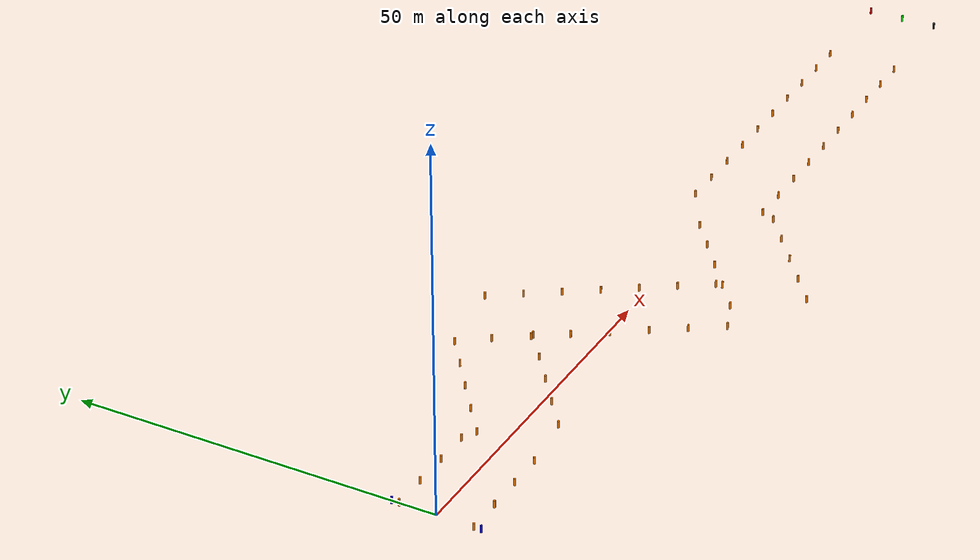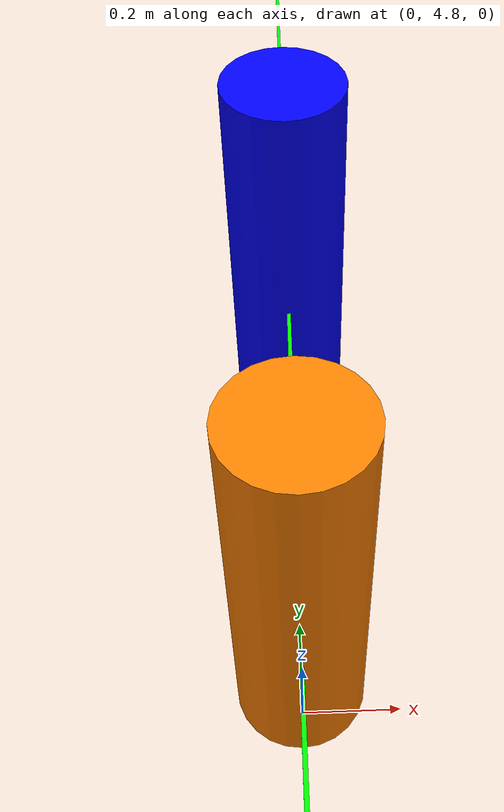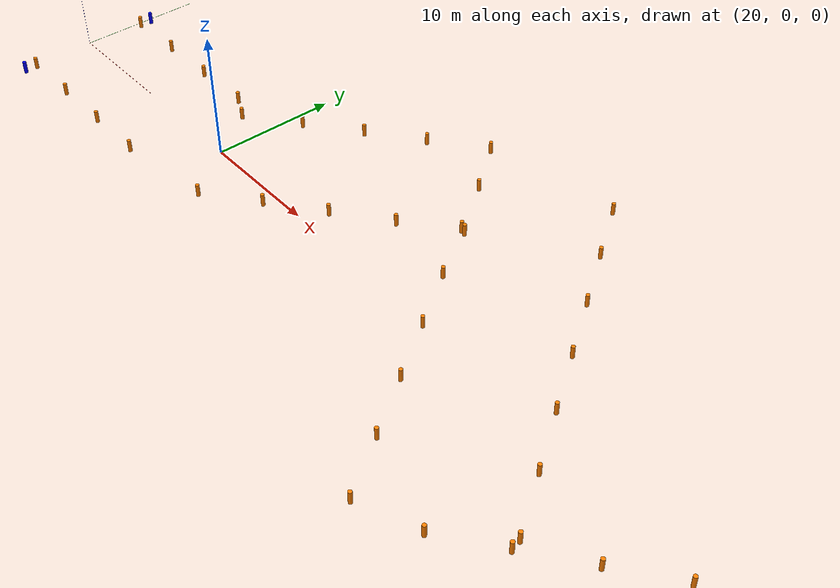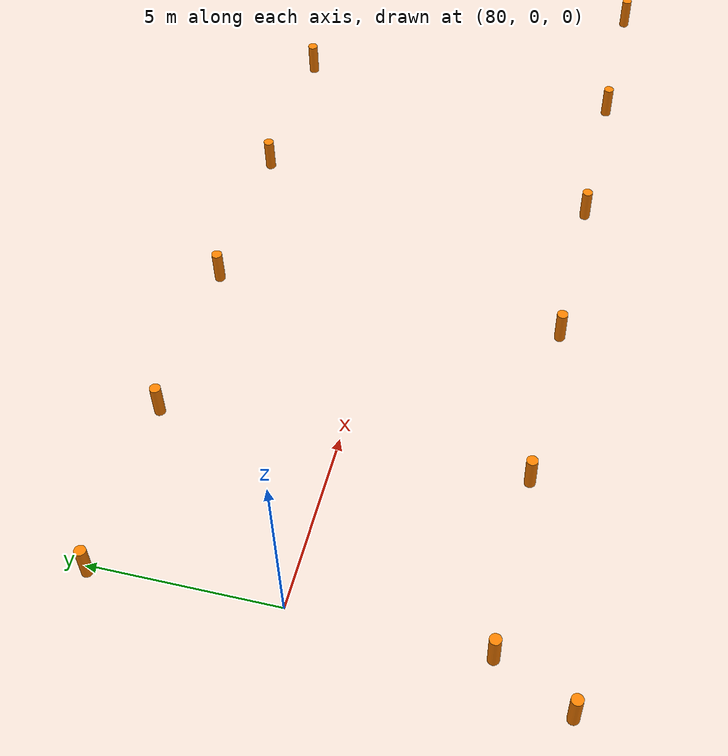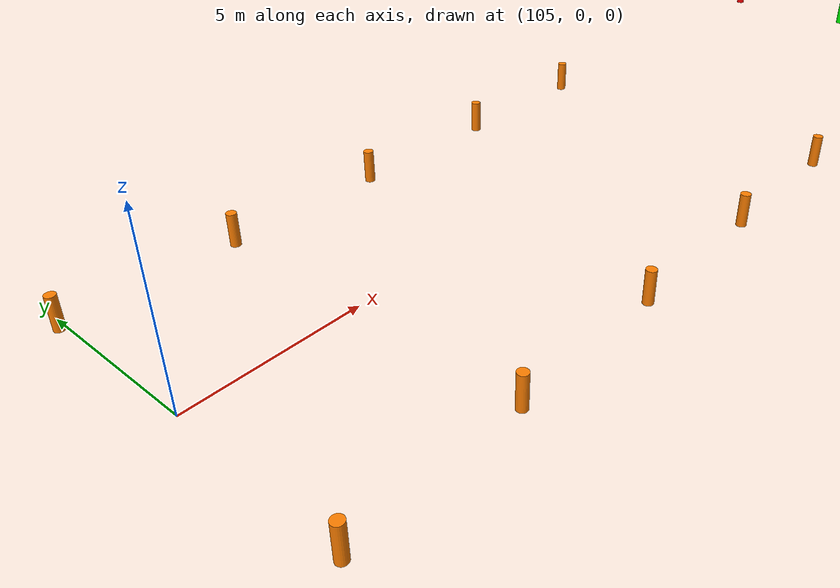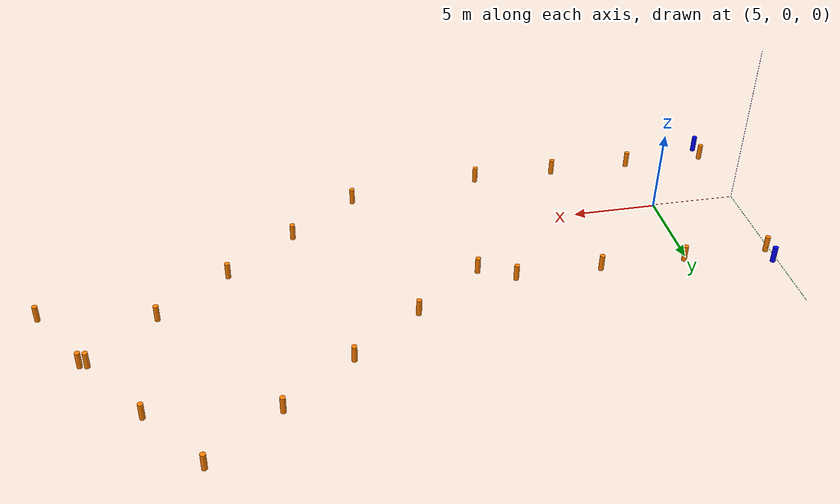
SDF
<sdf version="1.6">
 <world name="waves">
  <plugin filename="gz-sim-physics-system" name="gz::sim::systems::Physics"/>
  <plugin filename="gz-sim-sensors-system" name="gz::sim::systems::Sensors">
   <render_engine>ogre2</render_engine>
   <background_color>0.8 0.8 0.8</background_color>
  </plugin>
  <plugin filename="gz-sim-scene-broadcaster-system" name="gz::sim::systems::SceneBroadcaster"/>
  <plugin filename="gz-sim-user-commands-system" name="gz::sim::systems::UserCommands"/>
  <plugin filename="gz-sim-imu-system" name="gz::sim::systems::Imu"/>
  <plugin filename="gz-sim-navsat-system" name="gz::sim::systems::NavSat"/>
  <spherical_coordinates>
   <surface_model>EARTH_WGS84</surface_model>
   <world_frame_orientation>ENU</world_frame_orientation>
   <latitude_deg>-22.986687</latitude_deg>
   <longitude_deg>-43.202501</longitude_deg>
   <elevation>0</elevation>
   <heading_deg>0</heading_deg>
  </spherical_coordinates>
  <scene><ambient>1.0 1.0 1.0</ambient><background>0.8 0.8 0.8</background></scene>
  <light type="directional" name="sun">
   <pose>0 0 10 0 0 0</pose>
   <diffuse>0.8 0.8 0.8 1</diffuse>
   <specular>0.6 0.6 0.6 1</specular>
   <direction>-0.5 0.1 -0.9</direction>
  </light>
  <model name="axes">
   <static>1</static>
   <link name="link">
    <visual name="r">
     <cast_shadows>0</cast_shadows>
     <pose>5 0 0.1 0 0 0</pose>
     <geometry><box><size>10 0.01 0.01</size></box></geometry>
     <material>
      <ambient>1 0 0 1</ambient>
      <diffuse>1 0 0 1</diffuse>
      <emissive>1 0 0 1</emissive>
      <specular>0.5 0.5 0.5 1</specular>
     </material>
    </visual>
    <visual name="g">
     <cast_shadows>0</cast_shadows>
     <pose>0 5 0.1 0 0 0</pose>
     <geometry><box><size>0.01 10 0.01</size></box></geometry>
     <material>
      <ambient>0 1 0 1</ambient>
      <diffuse>0 1 0 1</diffuse>
      <emissive>0 1 0 1</emissive>
      <specular>0.5 0.5 0.5 1</specular>
     </material>
    </visual>
    <visual name="b">
     <cast_shadows>0</cast_shadows>
     <pose>0 0 5.1 0 0 0</pose>
     <geometry><box><size>0.01 0.01 10</size></box></geometry>
     <material>
      <ambient>0 0 1 1</ambient>
      <diffuse>0 0 1 1</diffuse>
      <emissive>0 0 1 1</emissive>
      <specular>0.5 0.5 0.5 1</specular>
     </material>
    </visual>
   </link>
  </model>
  <model name="p1_left_0_0">
   <pose>0.00 5.00 0.2 0 0 0</pose>
   <static>true</static>
   <link name="link">
    <visual name="visual">
     <geometry><cylinder><radius>0.15</radius><length>1.0</length></cylinder></geometry>
     <material><ambient>1 0.5 0 1</ambient><diffuse>1 0.5 0 1</diffuse></material>
    </visual>
    <collision name="collision">
     <geometry><cylinder><radius>0.15</radius><length>1.0</length></cylinder></geometry>
    </collision>
   </link>
  </model>
  <model name="p1_right_0_0">
   <pose>0.00 -5.00 0.2 0 0 0</pose>
   <static>true</static>
   <link name="link">
    <visual name="visual">
     <geometry><cylinder><radius>0.15</radius><length>1.0</length></cylinder></geometry>
     <material><ambient>1 0.5 0 1</ambient><diffuse>1 0.5 0 1</diffuse></material>
    </visual>
    <collision name="collision">
     <geometry><cylinder><radius>0.15</radius><length>1.0</length></cylinder></geometry>
    </collision>
   </link>
  </model>
  <model name="p1_left_0_1">
   <pose>5.00 5.00 0.2 0 0 0</pose>
   <static>true</static>
   <link name="link">
    <visual name="visual">
     <geometry><cylinder><radius>0.15</radius><length>1.0</length></cylinder></geometry>
     <material><ambient>1 0.5 0 1</ambient><diffuse>1 0.5 0 1</diffuse></material>
    </visual>
    <collision name="collision">
     <geometry><cylinder><radius>0.15</radius><length>1.0</length></cylinder></geometry>
    </collision>
   </link>
  </model>
  <model name="p1_right_0_1">
   <pose>5.00 -5.00 0.2 0 0 0</pose>
   <static>true</static>
   <link name="link">
    <visual name="visual">
     <geometry><cylinder><radius>0.15</radius><length>1.0</length></cylinder></geometry>
     <material><ambient>1 0.5 0 1</ambient><diffuse>1 0.5 0 1</diffuse></material>
    </visual>
    <collision name="collision">
     <geometry><cylinder><radius>0.15</radius><length>1.0</length></cylinder></geometry>
    </collision>
   </link>
  </model>
  <model name="p1_left_0_2">
   <pose>10.00 5.00 0.2 0 0 0</pose>
   <static>true</static>
   <link name="link">
    <visual name="visual">
     <geometry><cylinder><radius>0.15</radius><length>1.0</length></cylinder></geometry>
     <material><ambient>1 0.5 0 1</ambient><diffuse>1 0.5 0 1</diffuse></material>
    </visual>
    <collision name="collision">
     <geometry><cylinder><radius>0.15</radius><length>1.0</length></cylinder></geometry>
    </collision>
   </link>
  </model>
  <model name="p1_right_0_2">
   <pose>10.00 -5.00 0.2 0 0 0</pose>
   <static>true</static>
   <link name="link">
    <visual name="visual">
     <geometry><cylinder><radius>0.15</radius><length>1.0</length></cylinder></geometry>
     <material><ambient>1 0.5 0 1</ambient><diffuse>1 0.5 0 1</diffuse></material>
    </visual>
    <collision name="collision">
     <geometry><cylinder><radius>0.15</radius><length>1.0</length></cylinder></geometry>
    </collision>
   </link>
  </model>
  <model name="p1_left_0_3">
   <pose>15.00 5.00 0.2 0 0 0</pose>
   <static>true</static>
   <link name="link">
    <visual name="visual">
     <geometry><cylinder><radius>0.15</radius><length>1.0</length></cylinder></geometry>
     <material><ambient>1 0.5 0 1</ambient><diffuse>1 0.5 0 1</diffuse></material>
    </visual>
    <collision name="collision">
     <geometry><cylinder><radius>0.15</radius><length>1.0</length></cylinder></geometry>
    </collision>
   </link>
  </model>
  <model name="p1_right_0_3">
   <pose>15.00 -5.00 0.2 0 0 0</pose>
   <static>true</static>
   <link name="link">
    <visual name="visual">
     <geometry><cylinder><radius>0.15</radius><length>1.0</length></cylinder></geometry>
     <material><ambient>1 0.5 0 1</ambient><diffuse>1 0.5 0 1</diffuse></material>
    </visual>
    <collision name="collision">
     <geometry><cylinder><radius>0.15</radius><length>1.0</length></cylinder></geometry>
    </collision>
   </link>
  </model>
  <model name="p1_left_1_0">
   <pose>17.00 4.00 0.2 0 0 0</pose>
   <static>true</static>
   <link name="link">
    <visual name="visual">
     <geometry><cylinder><radius>0.15</radius><length>1.0</length></cylinder></geometry>
     <material><ambient>1 0.5 0 1</ambient><diffuse>1 0.5 0 1</diffuse></material>
    </visual>
    <collision name="collision">
     <geometry><cylinder><radius>0.15</radius><length>1.0</length></cylinder></geometry>
    </collision>
   </link>
  </model>
  <model name="p1_right_1_0">
   <pose>23.00 -4.00 0.2 0 0 0</pose>
   <static>true</static>
   <link name="link">
    <visual name="visual">
     <geometry><cylinder><radius>0.15</radius><length>1.0</length></cylinder></geometry>
     <material><ambient>1 0.5 0 1</ambient><diffuse>1 0.5 0 1</diffuse></material>
    </visual>
    <collision name="collision">
     <geometry><cylinder><radius>0.15</radius><length>1.0</length></cylinder></geometry>
    </collision>
   </link>
  </model>
  <model name="p1_left_1_1">
   <pose>21.00 7.00 0.2 0 0 0</pose>
   <static>true</static>
   <link name="link">
    <visual name="visual">
     <geometry><cylinder><radius>0.15</radius><length>1.0</length></cylinder></geometry>
     <material><ambient>1 0.5 0 1</ambient><diffuse>1 0.5 0 1</diffuse></material>
    </visual>
    <collision name="collision">
     <geometry><cylinder><radius>0.15</radius><length>1.0</length></cylinder></geometry>
    </collision>
   </link>
  </model>
  <model name="p1_right_1_1">
   <pose>27.00 -1.00 0.2 0 0 0</pose>
   <static>true</static>
   <link name="link">
    <visual name="visual">
     <geometry><cylinder><radius>0.15</radius><length>1.0</length></cylinder></geometry>
     <material><ambient>1 0.5 0 1</ambient><diffuse>1 0.5 0 1</diffuse></material>
    </visual>
    <collision name="collision">
     <geometry><cylinder><radius>0.15</radius><length>1.0</length></cylinder></geometry>
    </collision>
   </link>
  </model>
  <model name="p1_left_1_2">
   <pose>25.00 10.00 0.2 0 0 0</pose>
   <static>true</static>
   <link name="link">
    <visual name="visual">
     <geometry><cylinder><radius>0.15</radius><length>1.0</length></cylinder></geometry>
     <material><ambient>1 0.5 0 1</ambient><diffuse>1 0.5 0 1</diffuse></material>
    </visual>
    <collision name="collision">
     <geometry><cylinder><radius>0.15</radius><length>1.0</length></cylinder></geometry>
    </collision>
   </link>
  </model>
  <model name="p1_right_1_2">
   <pose>31.00 2.00 0.2 0 0 0</pose>
   <static>true</static>
   <link name="link">
    <visual name="visual">
     <geometry><cylinder><radius>0.15</radius><length>1.0</length></cylinder></geometry>
     <material><ambient>1 0.5 0 1</ambient><diffuse>1 0.5 0 1</diffuse></material>
    </visual>
    <collision name="collision">
     <geometry><cylinder><radius>0.15</radius><length>1.0</length></cylinder></geometry>
    </collision>
   </link>
  </model>
  <model name="p1_left_1_3">
   <pose>29.00 13.00 0.2 0 0 0</pose>
   <static>true</static>
   <link name="link">
    <visual name="visual">
     <geometry><cylinder><radius>0.15</radius><length>1.0</length></cylinder></geometry>
     <material><ambient>1 0.5 0 1</ambient><diffuse>1 0.5 0 1</diffuse></material>
    </visual>
    <collision name="collision">
     <geometry><cylinder><radius>0.15</radius><length>1.0</length></cylinder></geometry>
    </collision>
   </link>
  </model>
  <model name="p1_right_1_3">
   <pose>35.00 5.00 0.2 0 0 0</pose>
   <static>true</static>
   <link name="link">
    <visual name="visual">
     <geometry><cylinder><radius>0.15</radius><length>1.0</length></cylinder></geometry>
     <material><ambient>1 0.5 0 1</ambient><diffuse>1 0.5 0 1</diffuse></material>
    </visual>
    <collision name="collision">
     <geometry><cylinder><radius>0.15</radius><length>1.0</length></cylinder></geometry>
    </collision>
   </link>
  </model>
  <model name="p1_left_1_4">
   <pose>33.00 16.00 0.2 0 0 0</pose>
   <static>true</static>
   <link name="link">
    <visual name="visual">
     <geometry><cylinder><radius>0.15</radius><length>1.0</length></cylinder></geometry>
     <material><ambient>1 0.5 0 1</ambient><diffuse>1 0.5 0 1</diffuse></material>
    </visual>
    <collision name="collision">
     <geometry><cylinder><radius>0.15</radius><length>1.0</length></cylinder></geometry>
    </collision>
   </link>
  </model>
  <model name="p1_right_1_4">
   <pose>39.00 8.00 0.2 0 0 0</pose>
   <static>true</static>
   <link name="link">
    <visual name="visual">
     <geometry><cylinder><radius>0.15</radius><length>1.0</length></cylinder></geometry>
     <material><ambient>1 0.5 0 1</ambient><diffuse>1 0.5 0 1</diffuse></material>
    </visual>
    <collision name="collision">
     <geometry><cylinder><radius>0.15</radius><length>1.0</length></cylinder></geometry>
    </collision>
   </link>
  </model>
  <model name="p1_left_2_0">
   <pose>44.16 17.77 0.2 0 0 0</pose>
   <static>true</static>
   <link name="link">
    <visual name="visual">
     <geometry><cylinder><radius>0.15</radius><length>1.0</length></cylinder></geometry>
     <material><ambient>1 0.5 0 1</ambient><diffuse>1 0.5 0 1</diffuse></material>
    </visual>
    <collision name="collision">
     <geometry><cylinder><radius>0.15</radius><length>1.0</length></cylinder></geometry>
    </collision>
   </link>
  </model>
  <model name="p1_right_2_0">
   <pose>35.84 12.23 0.2 0 0 0</pose>
   <static>true</static>
   <link name="link">
    <visual name="visual">
     <geometry><cylinder><radius>0.15</radius><length>1.0</length></cylinder></geometry>
     <material><ambient>1 0.5 0 1</ambient><diffuse>1 0.5 0 1</diffuse></material>
    </visual>
    <collision name="collision">
     <geometry><cylinder><radius>0.15</radius><length>1.0</length></cylinder></geometry>
    </collision>
   </link>
  </model>
  <model name="p1_left_2_1">
   <pose>46.93 13.61 0.2 0 0 0</pose>
   <static>true</static>
   <link name="link">
    <visual name="visual">
     <geometry><cylinder><radius>0.15</radius><length>1.0</length></cylinder></geometry>
     <material><ambient>1 0.5 0 1</ambient><diffuse>1 0.5 0 1</diffuse></material>
    </visual>
    <collision name="collision">
     <geometry><cylinder><radius>0.15</radius><length>1.0</length></cylinder></geometry>
    </collision>
   </link>
  </model>
  <model name="p1_right_2_1">
   <pose>38.61 8.07 0.2 0 0 0</pose>
   <static>true</static>
   <link name="link">
    <visual name="visual">
     <geometry><cylinder><radius>0.15</radius><length>1.0</length></cylinder></geometry>
     <material><ambient>1 0.5 0 1</ambient><diffuse>1 0.5 0 1</diffuse></material>
    </visual>
    <collision name="collision">
     <geometry><cylinder><radius>0.15</radius><length>1.0</length></cylinder></geometry>
    </collision>
   </link>
  </model>
  <model name="p1_left_2_2">
   <pose>49.71 9.45 0.2 0 0 0</pose>
   <static>true</static>
   <link name="link">
    <visual name="visual">
     <geometry><cylinder><radius>0.15</radius><length>1.0</length></cylinder></geometry>
     <material><ambient>1 0.5 0 1</ambient><diffuse>1 0.5 0 1</diffuse></material>
    </visual>
    <collision name="collision">
     <geometry><cylinder><radius>0.15</radius><length>1.0</length></cylinder></geometry>
    </collision>
   </link>
  </model>
  <model name="p1_right_2_2">
   <pose>41.39 3.91 0.2 0 0 0</pose>
   <static>true</static>
   <link name="link">
    <visual name="visual">
     <geometry><cylinder><radius>0.15</radius><length>1.0</length></cylinder></geometry>
     <material><ambient>1 0.5 0 1</ambient><diffuse>1 0.5 0 1</diffuse></material>
    </visual>
    <collision name="collision">
     <geometry><cylinder><radius>0.15</radius><length>1.0</length></cylinder></geometry>
    </collision>
   </link>
  </model>
  <model name="p1_left_2_3">
   <pose>52.48 5.29 0.2 0 0 0</pose>
   <static>true</static>
   <link name="link">
    <visual name="visual">
     <geometry><cylinder><radius>0.15</radius><length>1.0</length></cylinder></geometry>
     <material><ambient>1 0.5 0 1</ambient><diffuse>1 0.5 0 1</diffuse></material>
    </visual>
    <collision name="collision">
     <geometry><cylinder><radius>0.15</radius><length>1.0</length></cylinder></geometry>
    </collision>
   </link>
  </model>
  <model name="p1_right_2_3">
   <pose>44.16 -0.25 0.2 0 0 0</pose>
   <static>true</static>
   <link name="link">
    <visual name="visual">
     <geometry><cylinder><radius>0.15</radius><length>1.0</length></cylinder></geometry>
     <material><ambient>1 0.5 0 1</ambient><diffuse>1 0.5 0 1</diffuse></material>
    </visual>
    <collision name="collision">
     <geometry><cylinder><radius>0.15</radius><length>1.0</length></cylinder></geometry>
    </collision>
   </link>
  </model>
  <model name="p1_left_2_4">
   <pose>55.25 1.13 0.2 0 0 0</pose>
   <static>true</static>
   <link name="link">
    <visual name="visual">
     <geometry><cylinder><radius>0.15</radius><length>1.0</length></cylinder></geometry>
     <material><ambient>1 0.5 0 1</ambient><diffuse>1 0.5 0 1</diffuse></material>
    </visual>
    <collision name="collision">
     <geometry><cylinder><radius>0.15</radius><length>1.0</length></cylinder></geometry>
    </collision>
   </link>
  </model>
  <model name="p1_right_2_4">
   <pose>46.93 -4.41 0.2 0 0 0</pose>
   <static>true</static>
   <link name="link">
    <visual name="visual">
     <geometry><cylinder><radius>0.15</radius><length>1.0</length></cylinder></geometry>
     <material><ambient>1 0.5 0 1</ambient><diffuse>1 0.5 0 1</diffuse></material>
    </visual>
    <collision name="collision">
     <geometry><cylinder><radius>0.15</radius><length>1.0</length></cylinder></geometry>
    </collision>
   </link>
  </model>
  <model name="p1_left_2_5">
   <pose>58.03 -3.03 0.2 0 0 0</pose>
   <static>true</static>
   <link name="link">
    <visual name="visual">
     <geometry><cylinder><radius>0.15</radius><length>1.0</length></cylinder></geometry>
     <material><ambient>1 0.5 0 1</ambient><diffuse>1 0.5 0 1</diffuse></material>
    </visual>
    <collision name="collision">
     <geometry><cylinder><radius>0.15</radius><length>1.0</length></cylinder></geometry>
    </collision>
   </link>
  </model>
  <model name="p1_right_2_5">
   <pose>49.71 -8.57 0.2 0 0 0</pose>
   <static>true</static>
   <link name="link">
    <visual name="visual">
     <geometry><cylinder><radius>0.15</radius><length>1.0</length></cylinder></geometry>
     <material><ambient>1 0.5 0 1</ambient><diffuse>1 0.5 0 1</diffuse></material>
    </visual>
    <collision name="collision">
     <geometry><cylinder><radius>0.15</radius><length>1.0</length></cylinder></geometry>
    </collision>
   </link>
  </model>
  <model name="p1_left_2_6">
   <pose>60.80 -7.19 0.2 0 0 0</pose>
   <static>true</static>
   <link name="link">
    <visual name="visual">
     <geometry><cylinder><radius>0.15</radius><length>1.0</length></cylinder></geometry>
     <material><ambient>1 0.5 0 1</ambient><diffuse>1 0.5 0 1</diffuse></material>
    </visual>
    <collision name="collision">
     <geometry><cylinder><radius>0.15</radius><length>1.0</length></cylinder></geometry>
    </collision>
   </link>
  </model>
  <model name="p1_right_2_6">
   <pose>52.48 -12.74 0.2 0 0 0</pose>
   <static>true</static>
   <link name="link">
    <visual name="visual">
     <geometry><cylinder><radius>0.15</radius><length>1.0</length></cylinder></geometry>
     <material><ambient>1 0.5 0 1</ambient><diffuse>1 0.5 0 1</diffuse></material>
    </visual>
    <collision name="collision">
     <geometry><cylinder><radius>0.15</radius><length>1.0</length></cylinder></geometry>
    </collision>
   </link>
  </model>
  <model name="p1_left_3_0">
   <pose>57.00 -11.00 0.2 0 0 0</pose>
   <static>true</static>
   <link name="link">
    <visual name="visual">
     <geometry><cylinder><radius>0.15</radius><length>1.0</length></cylinder></geometry>
     <material><ambient>1 0.5 0 1</ambient><diffuse>1 0.5 0 1</diffuse></material>
    </visual>
    <collision name="collision">
     <geometry><cylinder><radius>0.15</radius><length>1.0</length></cylinder></geometry>
    </collision>
   </link>
  </model>
  <model name="p1_right_3_0">
   <pose>63.00 -19.00 0.2 0 0 0</pose>
   <static>true</static>
   <link name="link">
    <visual name="visual">
     <geometry><cylinder><radius>0.15</radius><length>1.0</length></cylinder></geometry>
     <material><ambient>1 0.5 0 1</ambient><diffuse>1 0.5 0 1</diffuse></material>
    </visual>
    <collision name="collision">
     <geometry><cylinder><radius>0.15</radius><length>1.0</length></cylinder></geometry>
    </collision>
   </link>
  </model>
  <model name="p1_left_3_1">
   <pose>61.00 -8.00 0.2 0 0 0</pose>
   <static>true</static>
   <link name="link">
    <visual name="visual">
     <geometry><cylinder><radius>0.15</radius><length>1.0</length></cylinder></geometry>
     <material><ambient>1 0.5 0 1</ambient><diffuse>1 0.5 0 1</diffuse></material>
    </visual>
    <collision name="collision">
     <geometry><cylinder><radius>0.15</radius><length>1.0</length></cylinder></geometry>
    </collision>
   </link>
  </model>
  <model name="p1_right_3_1">
   <pose>67.00 -16.00 0.2 0 0 0</pose>
   <static>true</static>
   <link name="link">
    <visual name="visual">
     <geometry><cylinder><radius>0.15</radius><length>1.0</length></cylinder></geometry>
     <material><ambient>1 0.5 0 1</ambient><diffuse>1 0.5 0 1</diffuse></material>
    </visual>
    <collision name="collision">
     <geometry><cylinder><radius>0.15</radius><length>1.0</length></cylinder></geometry>
    </collision>
   </link>
  </model>
  <model name="p1_left_3_2">
   <pose>65.00 -5.00 0.2 0 0 0</pose>
   <static>true</static>
   <link name="link">
    <visual name="visual">
     <geometry><cylinder><radius>0.15</radius><length>1.0</length></cylinder></geometry>
     <material><ambient>1 0.5 0 1</ambient><diffuse>1 0.5 0 1</diffuse></material>
    </visual>
    <collision name="collision">
     <geometry><cylinder><radius>0.15</radius><length>1.0</length></cylinder></geometry>
    </collision>
   </link>
  </model>
  <model name="p1_right_3_2">
   <pose>71.00 -13.00 0.2 0 0 0</pose>
   <static>true</static>
   <link name="link">
    <visual name="visual">
     <geometry><cylinder><radius>0.15</radius><length>1.0</length></cylinder></geometry>
     <material><ambient>1 0.5 0 1</ambient><diffuse>1 0.5 0 1</diffuse></material>
    </visual>
    <collision name="collision">
     <geometry><cylinder><radius>0.15</radius><length>1.0</length></cylinder></geometry>
    </collision>
   </link>
  </model>
  <model name="p1_left_3_3">
   <pose>69.00 -2.00 0.2 0 0 0</pose>
   <static>true</static>
   <link name="link">
    <visual name="visual">
     <geometry><cylinder><radius>0.15</radius><length>1.0</length></cylinder></geometry>
     <material><ambient>1 0.5 0 1</ambient><diffuse>1 0.5 0 1</diffuse></material>
    </visual>
    <collision name="collision">
     <geometry><cylinder><radius>0.15</radius><length>1.0</length></cylinder></geometry>
    </collision>
   </link>
  </model>
  <model name="p1_right_3_3">
   <pose>75.00 -10.00 0.2 0 0 0</pose>
   <static>true</static>
   <link name="link">
    <visual name="visual">
     <geometry><cylinder><radius>0.15</radius><length>1.0</length></cylinder></geometry>
     <material><ambient>1 0.5 0 1</ambient><diffuse>1 0.5 0 1</diffuse></material>
    </visual>
    <collision name="collision">
     <geometry><cylinder><radius>0.15</radius><length>1.0</length></cylinder></geometry>
    </collision>
   </link>
  </model>
  <model name="p1_left_3_4">
   <pose>73.00 1.00 0.2 0 0 0</pose>
   <static>true</static>
   <link name="link">
    <visual name="visual">
     <geometry><cylinder><radius>0.15</radius><length>1.0</length></cylinder></geometry>
     <material><ambient>1 0.5 0 1</ambient><diffuse>1 0.5 0 1</diffuse></material>
    </visual>
    <collision name="collision">
     <geometry><cylinder><radius>0.15</radius><length>1.0</length></cylinder></geometry>
    </collision>
   </link>
  </model>
  <model name="p1_right_3_4">
   <pose>79.00 -7.00 0.2 0 0 0</pose>
   <static>true</static>
   <link name="link">
    <visual name="visual">
     <geometry><cylinder><radius>0.15</radius><length>1.0</length></cylinder></geometry>
     <material><ambient>1 0.5 0 1</ambient><diffuse>1 0.5 0 1</diffuse></material>
    </visual>
    <collision name="collision">
     <geometry><cylinder><radius>0.15</radius><length>1.0</length></cylinder></geometry>
    </collision>
   </link>
  </model>
  <model name="p2_left_0">
   <pose>80.00 5.00 0.2 0 0 0</pose>
   <static>true</static>
   <link name="link">
    <visual name="visual">
     <geometry><cylinder><radius>0.15</radius><length>1.0</length></cylinder></geometry>
     <material><ambient>1 0.5 0 1</ambient><diffuse>1 0.5 0 1</diffuse></material>
    </visual>
    <collision name="collision">
     <geometry><cylinder><radius>0.15</radius><length>1.0</length></cylinder></geometry>
    </collision>
   </link>
  </model>
  <model name="p2_right_0">
   <pose>80.00 -5.00 0.2 0 0 0</pose>
   <static>true</static>
   <link name="link">
    <visual name="visual">
     <geometry><cylinder><radius>0.15</radius><length>1.0</length></cylinder></geometry>
     <material><ambient>1 0.5 0 1</ambient><diffuse>1 0.5 0 1</diffuse></material>
    </visual>
    <collision name="collision">
     <geometry><cylinder><radius>0.15</radius><length>1.0</length></cylinder></geometry>
    </collision>
   </link>
  </model>
  <model name="p2_left_1">
   <pose>85.00 5.00 0.2 0 0 0</pose>
   <static>true</static>
   <link name="link">
    <visual name="visual">
     <geometry><cylinder><radius>0.15</radius><length>1.0</length></cylinder></geometry>
     <material><ambient>1 0.5 0 1</ambient><diffuse>1 0.5 0 1</diffuse></material>
    </visual>
    <collision name="collision">
     <geometry><cylinder><radius>0.15</radius><length>1.0</length></cylinder></geometry>
    </collision>
   </link>
  </model>
  <model name="p2_right_1">
   <pose>85.00 -5.00 0.2 0 0 0</pose>
   <static>true</static>
   <link name="link">
    <visual name="visual">
     <geometry><cylinder><radius>0.15</radius><length>1.0</length></cylinder></geometry>
     <material><ambient>1 0.5 0 1</ambient><diffuse>1 0.5 0 1</diffuse></material>
    </visual>
    <collision name="collision">
     <geometry><cylinder><radius>0.15</radius><length>1.0</length></cylinder></geometry>
    </collision>
   </link>
  </model>
  <model name="p2_left_2">
   <pose>90.00 5.00 0.2 0 0 0</pose>
   <static>true</static>
   <link name="link">
    <visual name="visual">
     <geometry><cylinder><radius>0.15</radius><length>1.0</length></cylinder></geometry>
     <material><ambient>1 0.5 0 1</ambient><diffuse>1 0.5 0 1</diffuse></material>
    </visual>
    <collision name="collision">
     <geometry><cylinder><radius>0.15</radius><length>1.0</length></cylinder></geometry>
    </collision>
   </link>
  </model>
  <model name="p2_right_2">
   <pose>90.00 -5.00 0.2 0 0 0</pose>
   <static>true</static>
   <link name="link">
    <visual name="visual">
     <geometry><cylinder><radius>0.15</radius><length>1.0</length></cylinder></geometry>
     <material><ambient>1 0.5 0 1</ambient><diffuse>1 0.5 0 1</diffuse></material>
    </visual>
    <collision name="collision">
     <geometry><cylinder><radius>0.15</radius><length>1.0</length></cylinder></geometry>
    </collision>
   </link>
  </model>
  <model name="p2_left_3">
   <pose>95.00 5.00 0.2 0 0 0</pose>
   <static>true</static>
   <link name="link">
    <visual name="visual">
     <geometry><cylinder><radius>0.15</radius><length>1.0</length></cylinder></geometry>
     <material><ambient>1 0.5 0 1</ambient><diffuse>1 0.5 0 1</diffuse></material>
    </visual>
    <collision name="collision">
     <geometry><cylinder><radius>0.15</radius><length>1.0</length></cylinder></geometry>
    </collision>
   </link>
  </model>
  <model name="p2_right_3">
   <pose>95.00 -5.00 0.2 0 0 0</pose>
   <static>true</static>
   <link name="link">
    <visual name="visual">
     <geometry><cylinder><radius>0.15</radius><length>1.0</length></cylinder></geometry>
     <material><ambient>1 0.5 0 1</ambient><diffuse>1 0.5 0 1</diffuse></material>
    </visual>
    <collision name="collision">
     <geometry><cylinder><radius>0.15</radius><length>1.0</length></cylinder></geometry>
    </collision>
   </link>
  </model>
  <model name="p2_left_4">
   <pose>100.00 5.00 0.2 0 0 0</pose>
   <static>true</static>
   <link name="link">
    <visual name="visual">
     <geometry><cylinder><radius>0.15</radius><length>1.0</length></cylinder></geometry>
     <material><ambient>1 0.5 0 1</ambient><diffuse>1 0.5 0 1</diffuse></material>
    </visual>
    <collision name="collision">
     <geometry><cylinder><radius>0.15</radius><length>1.0</length></cylinder></geometry>
    </collision>
   </link>
  </model>
  <model name="p2_right_4">
   <pose>100.00 -5.00 0.2 0 0 0</pose>
   <static>true</static>
   <link name="link">
    <visual name="visual">
     <geometry><cylinder><radius>0.15</radius><length>1.0</length></cylinder></geometry>
     <material><ambient>1 0.5 0 1</ambient><diffuse>1 0.5 0 1</diffuse></material>
    </visual>
    <collision name="collision">
     <geometry><cylinder><radius>0.15</radius><length>1.0</length></cylinder></geometry>
    </collision>
   </link>
  </model>
  <model name="p2_left_5">
   <pose>105.00 5.00 0.2 0 0 0</pose>
   <static>true</static>
   <link name="link">
    <visual name="visual">
     <geometry><cylinder><radius>0.15</radius><length>1.0</length></cylinder></geometry>
     <material><ambient>1 0.5 0 1</ambient><diffuse>1 0.5 0 1</diffuse></material>
    </visual>
    <collision name="collision">
     <geometry><cylinder><radius>0.15</radius><length>1.0</length></cylinder></geometry>
    </collision>
   </link>
  </model>
  <model name="p2_right_5">
   <pose>105.00 -5.00 0.2 0 0 0</pose>
   <static>true</static>
   <link name="link">
    <visual name="visual">
     <geometry><cylinder><radius>0.15</radius><length>1.0</length></cylinder></geometry>
     <material><ambient>1 0.5 0 1</ambient><diffuse>1 0.5 0 1</diffuse></material>
    </visual>
    <collision name="collision">
     <geometry><cylinder><radius>0.15</radius><length>1.0</length></cylinder></geometry>
    </collision>
   </link>
  </model>
  <model name="p2_left_6">
   <pose>110.00 5.00 0.2 0 0 0</pose>
   <static>true</static>
   <link name="link">
    <visual name="visual">
     <geometry><cylinder><radius>0.15</radius><length>1.0</length></cylinder></geometry>
     <material><ambient>1 0.5 0 1</ambient><diffuse>1 0.5 0 1</diffuse></material>
    </visual>
    <collision name="collision">
     <geometry><cylinder><radius>0.15</radius><length>1.0</length></cylinder></geometry>
    </collision>
   </link>
  </model>
  <model name="p2_right_6">
   <pose>110.00 -5.00 0.2 0 0 0</pose>
   <static>true</static>
   <link name="link">
    <visual name="visual">
     <geometry><cylinder><radius>0.15</radius><length>1.0</length></cylinder></geometry>
     <material><ambient>1 0.5 0 1</ambient><diffuse>1 0.5 0 1</diffuse></material>
    </visual>
    <collision name="collision">
     <geometry><cylinder><radius>0.15</radius><length>1.0</length></cylinder></geometry>
    </collision>
   </link>
  </model>
  <model name="p2_left_7">
   <pose>115.00 5.00 0.2 0 0 0</pose>
   <static>true</static>
   <link name="link">
    <visual name="visual">
     <geometry><cylinder><radius>0.15</radius><length>1.0</length></cylinder></geometry>
     <material><ambient>1 0.5 0 1</ambient><diffuse>1 0.5 0 1</diffuse></material>
    </visual>
    <collision name="collision">
     <geometry><cylinder><radius>0.15</radius><length>1.0</length></cylinder></geometry>
    </collision>
   </link>
  </model>
  <model name="p2_right_7">
   <pose>115.00 -5.00 0.2 0 0 0</pose>
   <static>true</static>
   <link name="link">
    <visual name="visual">
     <geometry><cylinder><radius>0.15</radius><length>1.0</length></cylinder></geometry>
     <material><ambient>1 0.5 0 1</ambient><diffuse>1 0.5 0 1</diffuse></material>
    </visual>
    <collision name="collision">
     <geometry><cylinder><radius>0.15</radius><length>1.0</length></cylinder></geometry>
    </collision>
   </link>
  </model>
  <model name="p2_left_8">
   <pose>120.00 5.00 0.2 0 0 0</pose>
   <static>true</static>
   <link name="link">
    <visual name="visual">
     <geometry><cylinder><radius>0.15</radius><length>1.0</length></cylinder></geometry>
     <material><ambient>1 0.5 0 1</ambient><diffuse>1 0.5 0 1</diffuse></material>
    </visual>
    <collision name="collision">
     <geometry><cylinder><radius>0.15</radius><length>1.0</length></cylinder></geometry>
    </collision>
   </link>
  </model>
  <model name="p2_right_8">
   <pose>120.00 -5.00 0.2 0 0 0</pose>
   <static>true</static>
   <link name="link">
    <visual name="visual">
     <geometry><cylinder><radius>0.15</radius><length>1.0</length></cylinder></geometry>
     <material><ambient>1 0.5 0 1</ambient><diffuse>1 0.5 0 1</diffuse></material>
    </visual>
    <collision name="collision">
     <geometry><cylinder><radius>0.15</radius><length>1.0</length></cylinder></geometry>
    </collision>
   </link>
  </model>
  <model name="p2_left_9">
   <pose>125.00 5.00 0.2 0 0 0</pose>
   <static>true</static>
   <link name="link">
    <visual name="visual">
     <geometry><cylinder><radius>0.15</radius><length>1.0</length></cylinder></geometry>
     <material><ambient>1 0.5 0 1</ambient><diffuse>1 0.5 0 1</diffuse></material>
    </visual>
    <collision name="collision">
     <geometry><cylinder><radius>0.15</radius><length>1.0</length></cylinder></geometry>
    </collision>
   </link>
  </model>
  <model name="p2_right_9">
   <pose>125.00 -5.00 0.2 0 0 0</pose>
   <static>true</static>
   <link name="link">
    <visual name="visual">
     <geometry><cylinder><radius>0.15</radius><length>1.0</length></cylinder></geometry>
     <material><ambient>1 0.5 0 1</ambient><diffuse>1 0.5 0 1</diffuse></material>
    </visual>
    <collision name="collision">
     <geometry><cylinder><radius>0.15</radius><length>1.0</length></cylinder></geometry>
    </collision>
   </link>
  </model>
  <model name="target_red">
   <pose>140.00 5.00 0.2 0 0 0</pose>
   <static>true</static>
   <link name="link">
    <visual name="visual">
     <geometry><cylinder><radius>0.15</radius><length>1.0</length></cylinder></geometry>
     <material><ambient>1 0 0 1</ambient><diffuse>1 0 0 1</diffuse></material>
    </visual>
    <collision name="collision">
     <geometry><cylinder><radius>0.15</radius><length>1.0</length></cylinder></geometry>
    </collision>
   </link>
  </model>
  <model name="target_green">
   <pose>140.00 0.00 0.2 0 0 0</pose>
   <static>true</static>
   <link name="link">
    <visual name="visual">
     <geometry><cylinder><radius>0.15</radius><length>1.0</length></cylinder></geometry>
     <material><ambient>0 1 0 1</ambient><diffuse>0 1 0 1</diffuse></material>
    </visual>
    <collision name="collision">
     <geometry><cylinder><radius>0.15</radius><length>1.0</length></cylinder></geometry>
    </collision>
   </link>
  </model>
  <model name="target_black">
   <pose>140.00 -5.00 0.2 0 0 0</pose>
   <static>true</static>
   <link name="link">
    <visual name="visual">
     <geometry><cylinder><radius>0.15</radius><length>1.0</length></cylinder></geometry>
     <material><ambient>0 0 0 1</ambient><diffuse>0 0 0 1</diffuse></material>
    </visual>
    <collision name="collision">
     <geometry><cylinder><radius>0.15</radius><length>1.0</length></cylinder></geometry>
    </collision>
   </link>
  </model>
  <model name="start_gate_left">
   <pose>0.00 6.00 0.2 0 0 0</pose>
   <static>true</static>
   <link name="link">
    <visual name="visual">
     <geometry><cylinder><radius>0.15</radius><length>1.0</length></cylinder></geometry>
     <material><ambient>0 0 1 1</ambient><diffuse>0 0 1 1</diffuse></material>
    </visual>
    <collision name="collision">
     <geometry><cylinder><radius>0.15</radius><length>1.0</length></cylinder></geometry>
    </collision>
   </link>
  </model>
  <model name="start_gate_right">
   <pose>0.00 -6.00 0.2 0 0 0</pose>
   <static>true</static>
   <link name="link">
    <visual name="visual">
     <geometry><cylinder><radius>0.15</radius><length>1.0</length></cylinder></geometry>
     <material><ambient>0 0 1 1</ambient><diffuse>0 0 1 1</diffuse></material>
    </visual>
    <collision name="collision">
     <geometry><cylinder><radius>0.15</radius><length>1.0</length></cylinder></geometry>
    </collision>
   </link>
  </model>
 </world>
</sdf>
